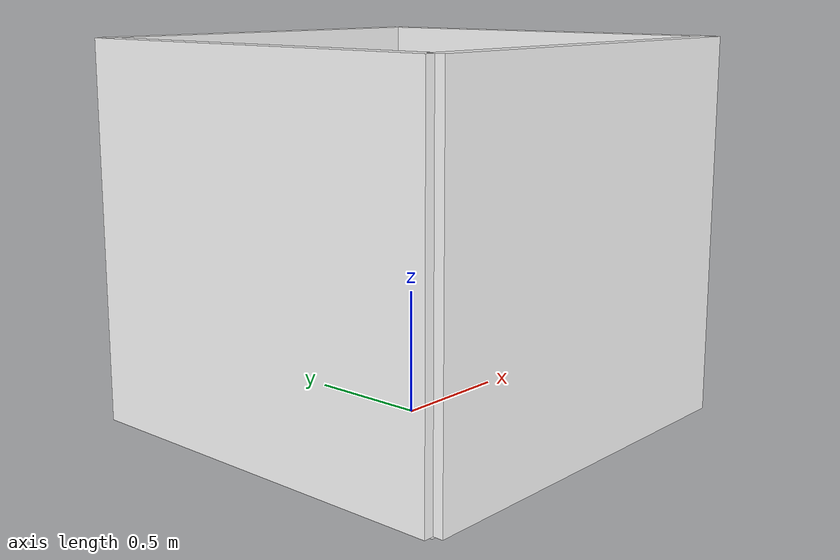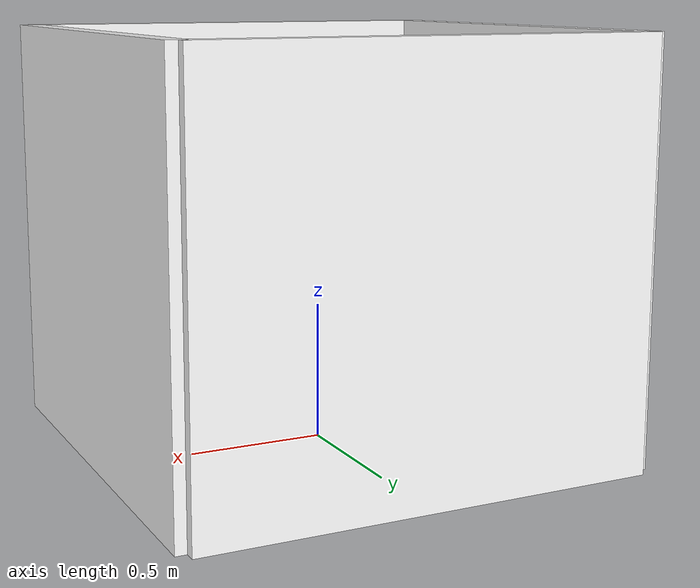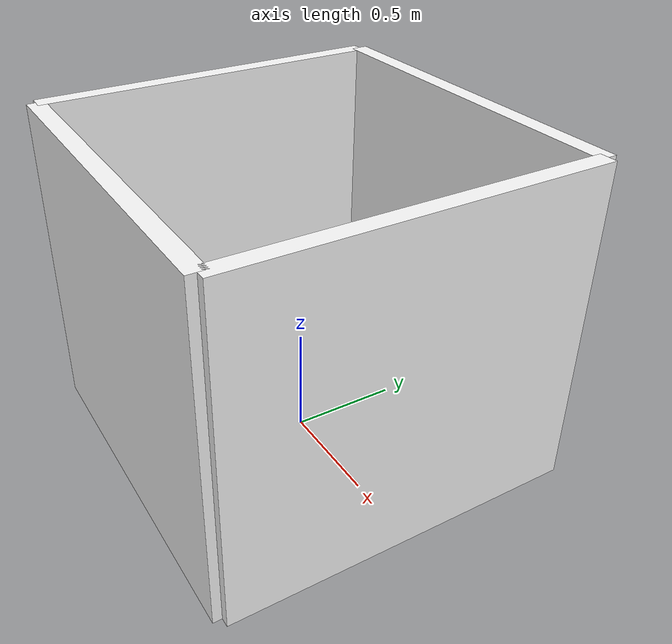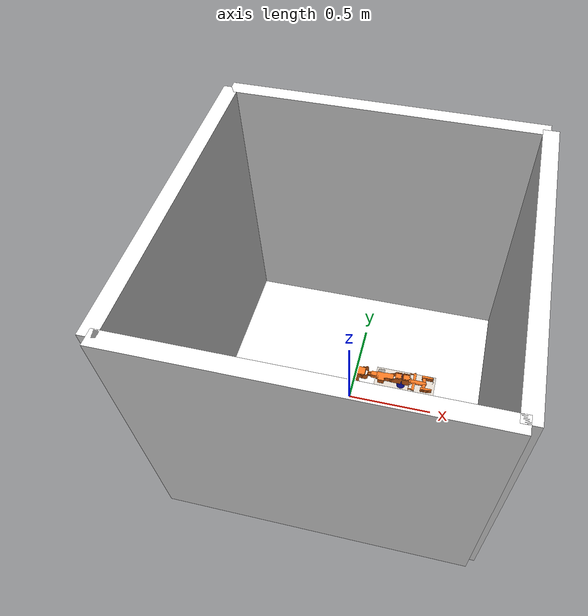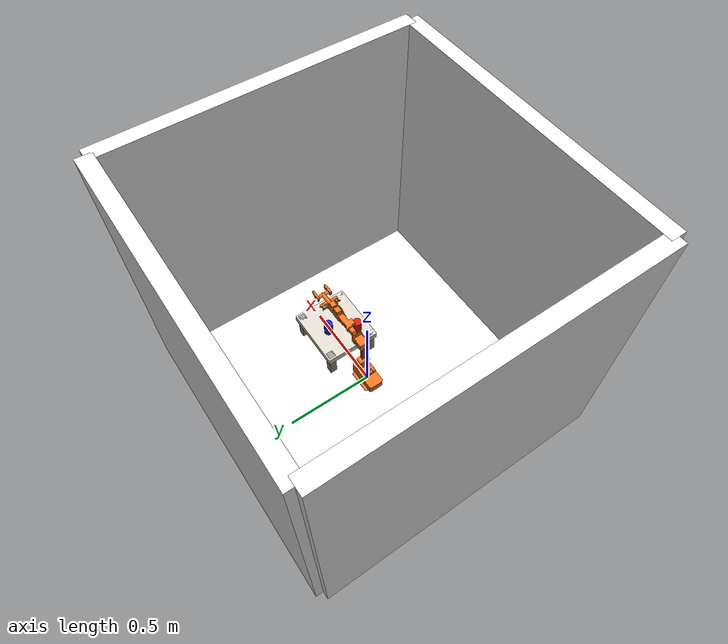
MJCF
<mujoco model="SGR532_pick_place">
  <visual>
    <headlight active="1" ambient="0.8 0.8 0.8" diffuse="0.6 0.6 0.6"/>
    <global offwidth="480" offheight="480"/>
  </visual>
  <compiler meshdir="meshes" angle="degree" autolimits="false"/>

  <default>
    <geom type="mesh" contype="0" conaffinity="0" rgba="0.95 0.45 0.12 1"/>
    <joint type="hinge" armature="0.001" damping="0.05" frictionloss="0.05"/>
    <default class="gripper">
      <joint type="slide" armature="0.001" damping="0.05" frictionloss="0.1"/>
    </default>
  </default>

  <option timestep="0.004" integrator="implicit"/>

  <asset>
    <mesh name="base" file="sagittarius_base_link.obj"/>
    <mesh name="l1"    file="link1.obj"/>
    <mesh name="l2"    file="link2.obj"/>
    <mesh name="l3"    file="link3.obj"/>
    <mesh name="l4"    file="link4.obj"/>
    <mesh name="l5"    file="link5.obj"/>
    <mesh name="l6"    file="link6.obj"/>
    <mesh name="gL"    file="link_gripper_left.obj"/>
    <mesh name="gR"    file="link_gripper_right.obj"/>
  </asset>

  <worldbody>
    <light dir="0 0 -1" diffuse="0.9 0.9 0.9" ambient="0.45 0.45 0.45" pos="0.5 0.5 1.5"/>

    <!-- 白色仿真房间 (~1.6m) -->
    <geom name="bg_floor" type="plane" size="0.80 0.80 0.02" rgba="0.97 0.97 0.97 1" pos="0 0 -0.02" contype="0" conaffinity="0"/>
    <geom name="bg_wall_xp" type="box" size="0.04 0.82 0.75" rgba="0.97 0.97 0.97 1" pos="0.82 0 0.75" contype="0" conaffinity="0"/>
    <geom name="bg_wall_xn" type="box" size="0.04 0.82 0.75" rgba="0.97 0.97 0.97 1" pos="-0.82 0 0.75" contype="0" conaffinity="0"/>
    <geom name="bg_wall_yp" type="box" size="0.82 0.04 0.75" rgba="0.97 0.97 0.97 1" pos="0 0.82 0.75" contype="0" conaffinity="0"/>
    <geom name="bg_wall_yn" type="box" size="0.82 0.04 0.75" rgba="0.97 0.97 0.97 1" pos="0 -0.82 0.75" contype="0" conaffinity="0"/>

    <!-- ========== 桌面与目标区 ==========
         桌面顶面 z=0.14, 范围 x[0.14,0.50], y[-0.16,0.16]（在臂前方可达区内）
         桌面参与碰撞(contype=1) 接住 freejoint 物体; 臂本体默认不碰撞 -->
    <body name="table" pos="0.32 0 0.12">
      <geom name="table_top" type="box" size="0.18 0.16 0.02" pos="0 0 0" rgba="0.85 0.82 0.78 1" contype="1" conaffinity="1"/>
      <geom name="table_leg1" type="box" size="0.02 0.02 0.14" pos="-0.15 0.13 -0.12" rgba="0.6 0.58 0.55 1" contype="0" conaffinity="0"/>
      <geom name="table_leg2" type="box" size="0.02 0.02 0.14" pos="-0.15 -0.13 -0.12" rgba="0.6 0.58 0.55 1" contype="0" conaffinity="0"/>
      <geom name="table_leg3" type="box" size="0.02 0.02 0.14" pos="0.15 0.13 -0.12" rgba="0.6 0.58 0.55 1" contype="0" conaffinity="0"/>
      <geom name="table_leg4" type="box" size="0.02 0.02 0.14" pos="0.15 -0.13 -0.12" rgba="0.6 0.58 0.55 1" contype="0" conaffinity="0"/>
      <!-- 目标托盘(固定记号, 放这一格): 不参与碰撞, 纯观感标记 -->
      <geom name="target_tray" type="cylinder" size="0.055 0.006" pos="0.10 0 0.008" rgba="0.15 0.55 0.45 1" contype="0" conaffinity="0"/>
      <site name="tray_site" pos="0.10 0 0.01" size="0.002"/>
      <!-- 相机锚点(不可见), 顶视相机看向桌面中心 -->
      <body name="table_anchor" pos="0 0 0.02">
        <geom name="anchor_vis" type="sphere" size="0.005" rgba="0 0 0 0" contype="0" conaffinity="0"/>
      </body>
    </body>

    <!-- 相机: 顶视看桌面(采集用), 墙装跟随看夹爪 -->
    <camera name="cam_top" fovy="50" pos="0.32 -0.55 0.62" mode="targetbody" target="table_anchor"/>
    <camera name="arm_cam" fovy="45" pos="0 0.78 0.75" mode="targetbody" target="link6"/>

    <!-- ========== 机械臂(同 sgr532.mjcf, 夹爪两片改为可碰撞以捏住物体) ========== -->
    <body name="base_link" pos="0 0 0">
      <geom name="base" mesh="base"/>

      <body name="link1" pos="0.045 0 0.07">
        <joint name="J1" axis="0 0 -1"/>
        <geom name="l1" mesh="l1"/>

        <body name="link2" pos="0 -0.0001 0.055">
          <joint name="J2" axis="0 -1 0"/>
          <geom name="l2" mesh="l2"/>

          <body name="link3" pos="0.033 -0.0001 0.179">
            <joint name="J3" axis="0 -1 0"/>
            <geom name="l3" mesh="l3"/>

            <body name="link4" pos="0.0845 0 0">
              <joint name="J4" axis="-1 0 0"/>
              <geom name="l4" mesh="l4"/>

              <body name="link5" pos="0.08435 0.00065 0">
                <joint name="J5" axis="0 -1 0"/>
                <geom name="l5" mesh="l5"/>

                <body name="link6" pos="0.061387 0 0">
                  <joint name="J6" axis="-1 0 0"/>
                  <geom name="l6" mesh="l6"/>

                  <body name="grasp" pos="0.0557 0 0">
                    <geom name="fg_main" type="capsule" fromto="0 0 0 0.075 0 0" size="0.012" rgba="0.95 0.45 0.12 1"/>
                    <geom name="fg_arm_l" type="capsule" fromto="0.075 0 0 0.0695 0.033 0" size="0.010" rgba="0.95 0.45 0.12 1"/>
                    <geom name="fg_arm_r" type="capsule" fromto="0.075 0 0 0.0695 -0.033 0" size="0.010" rgba="0.95 0.45 0.12 1"/>

                    <body name="gripper_left" pos="0.0695 0.033 0">
                      <joint name="GL" class="gripper" axis="0 1 0" limited="true" range="-0.02 0.02"/>
                      <geom name="gL" mesh="gL" contype="1" conaffinity="1"/>
                    </body>

                    <body name="gripper_right" pos="0.0695 -0.033 0">
                      <joint name="GR" class="gripper" axis="0 -1 0" limited="true" range="-0.02 0.02"/>
                      <geom name="gR" mesh="gR" contype="1" conaffinity="1"/>
                    </body>

                  </body>
                </body>
              </body>
            </body>
          </body>
        </body>
      </body>
    </body>

    <!-- ========== 任务物体: 红杯 / 蓝杯(freejoint, 可被抓可移动) ========== -->
    <body name="cup_red" pos="0.22 -0.08 0.19">
      <freejoint name="cup_red"/>
      <geom name="c_red" type="cylinder" size="0.025 0.040" pos="0 0 0" rgba="0.82 0.10 0.10 1" density="400" friction="0.9 0.3 0.03" contype="1" conaffinity="1"/>
    </body>
    <body name="cup_blue" pos="0.30 0.06 0.19">
      <freejoint name="cup_blue"/>
      <geom name="c_blue" type="cylinder" size="0.025 0.040" pos="0 0 0" rgba="0.10 0.12 0.85 1" density="400" friction="0.9 0.3 0.03" contype="1" conaffinity="1"/>
    </body>
  </worldbody>
</mujoco>
